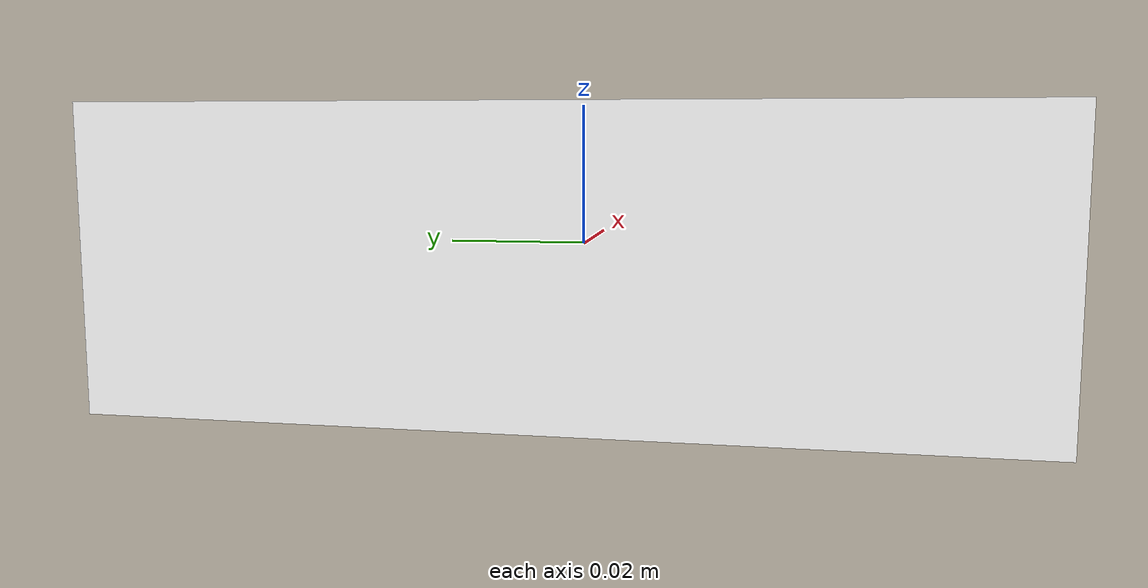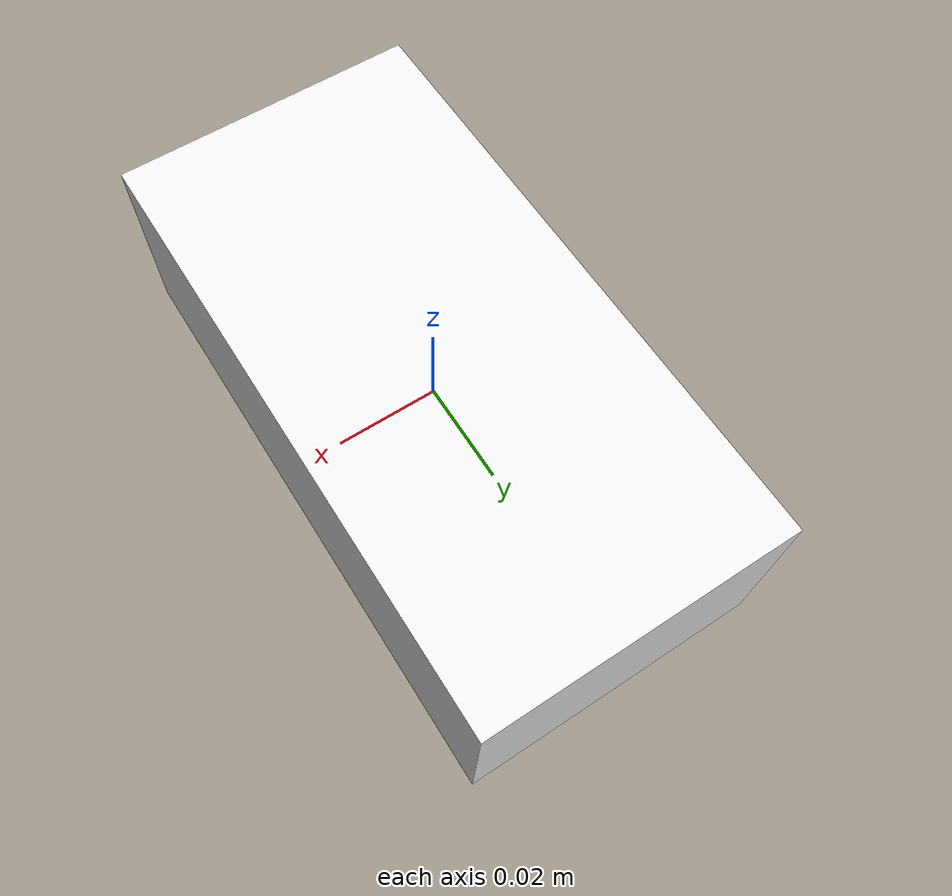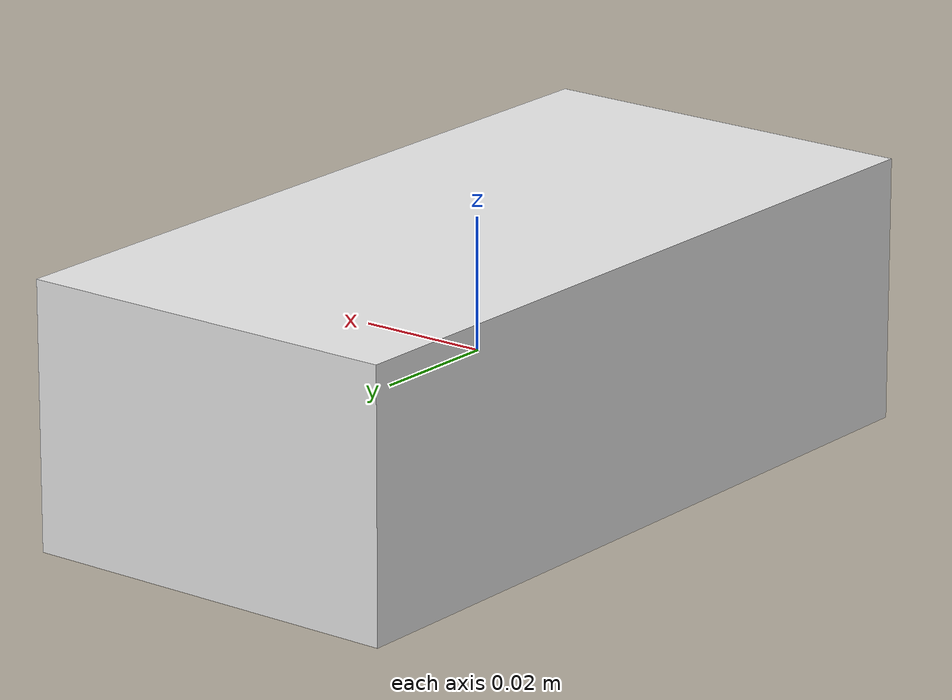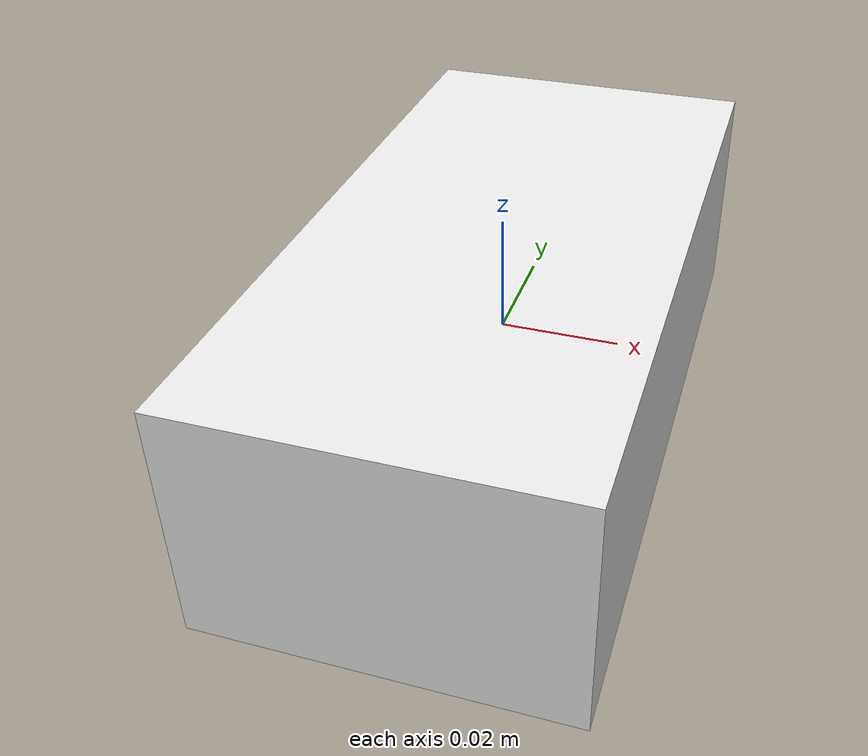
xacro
<?xml version="1.0"?>
<robot name="torso" xmlns:xacro="http://www.ros.org/wiki/xacro">

  <xacro:property name="lenx_pelvis" value="0.06"/>
  <xacro:property name="leny_pelvis" value="0.12"/>
  <xacro:property name="lenz_pelvis" value="0.04"/>

<xacro:include filename="$(find robotv1_description)/urdf/utilities.xacro"/>

  <link name="pelvis" >
    <visual>
      <origin xyz="0 0 0 " rpy="0 0 0" />
      <geometry>
        <box size="${lenx_pelvis} ${leny_pelvis} ${lenz_pelvis}"/>
      </geometry>
      <material name="white"/>
    </visual>
    <xacro:box_inertia lenx="${lenx_pelvis}" leny="${leny_pelvis}" lenz="${lenz_pelvis}"/>
    <collision>
      <origin xyz="0 0 0 " rpy="0 0 0" />
      <geometry>
        <box size="${lenx_pelvis} ${leny_pelvis} ${lenz_pelvis}"/>
      </geometry>
    </collision>
  </link>

  <gazebo reference="pelvis" >
    <mu1>0.4</mu1>
    <mu2>0.4</mu2>
    <material>Gazebo/White</material>
  </gazebo>

</robot>

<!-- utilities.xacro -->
<robot xmlns:xacro="http://www.ros.org/wiki/xacro">
  <xacro:property name="density" value="2700"/>
  <xacro:macro name="box_inertia" params="lenx leny lenz">
    <xacro:property name="mass" value="${density * lenx * leny * lenz}"/>
    <inertial>
      <mass value="${mass}" />
      <inertia
      ixx="${mass*(lenz*lenz+leny*leny)/12.0}" ixy="0.0" ixz="0.0"
      iyy="${mass*(lenz*lenz+lenx*lenx)/12.0}" iyz="0.0"
      izz="${mass*(lenx*lenx+leny*leny)/12.0}" />
    </inertial>
  </xacro:macro>
</robot>
